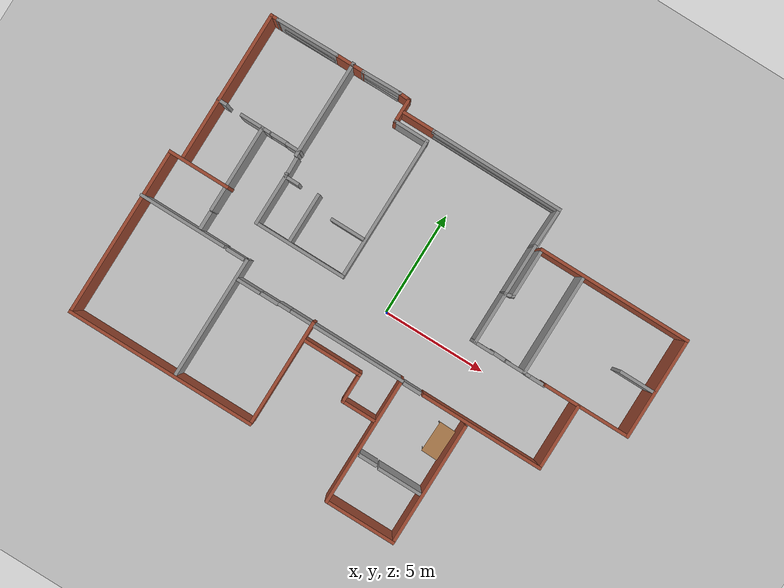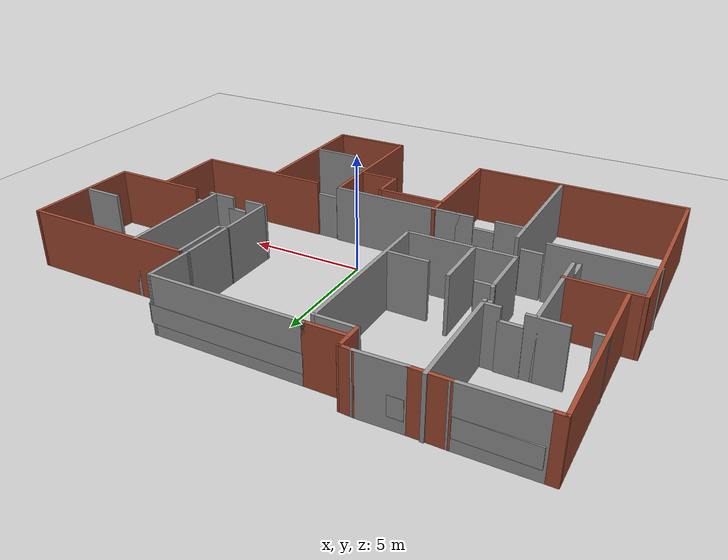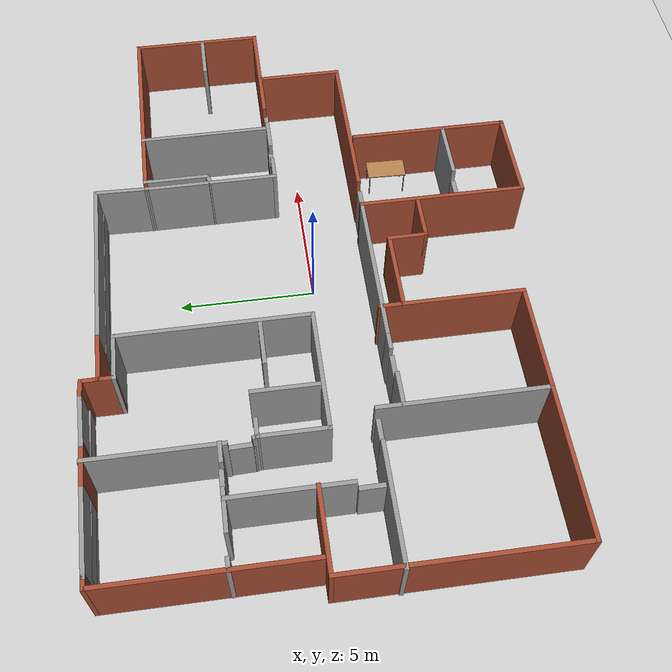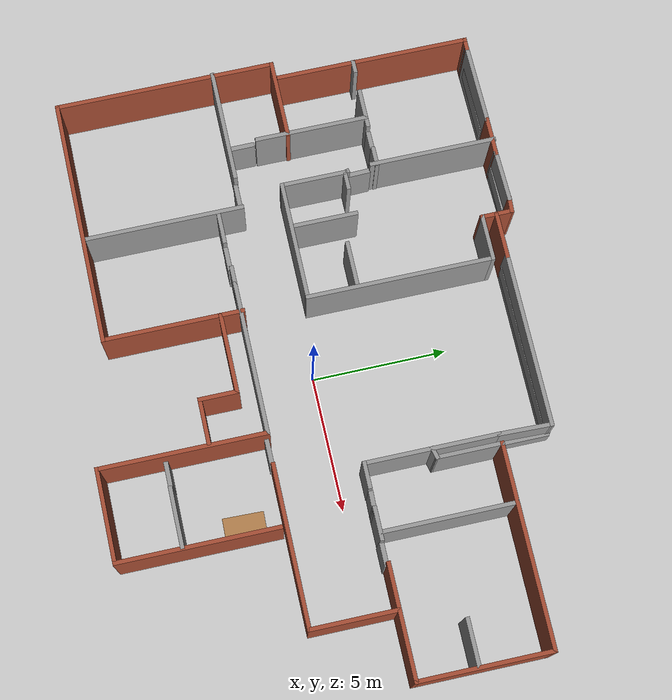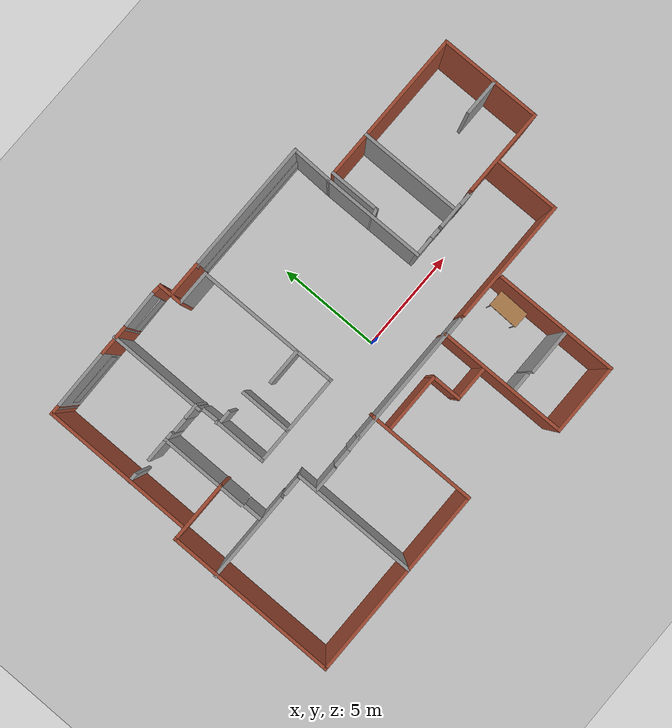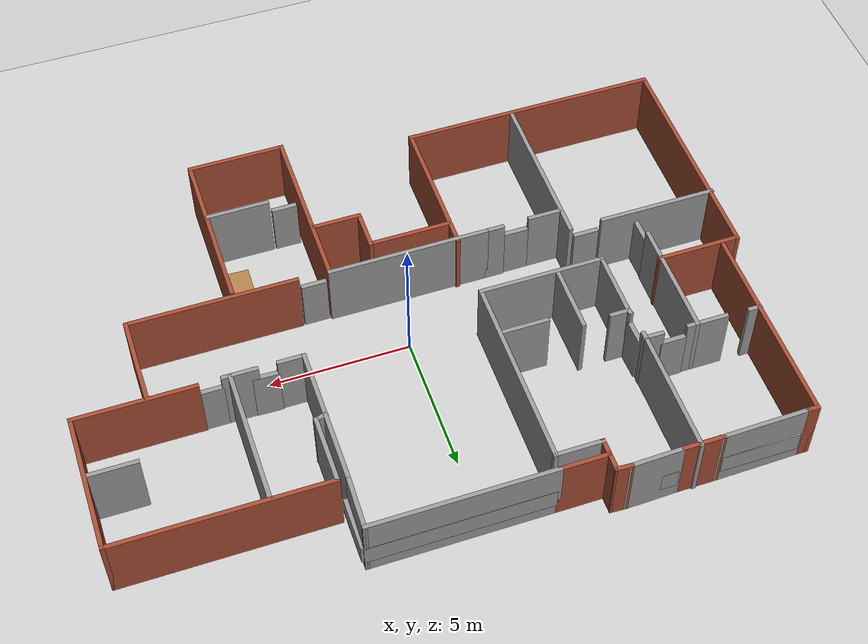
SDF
<sdf version="1.6">
 <world name="default">
  <model name="ground_plane">
   <static>1</static>
   <link name="link">
    <collision name="collision">
     <geometry><plane><normal>0 0 1</normal><size>100 100</size></plane></geometry>
     <surface>
      <contact><collide_bitmask>65535</collide_bitmask></contact>
      <friction><ode><mu>100</mu><mu2>50</mu2></ode></friction>
     </surface>
    </collision>
    <visual name="visual">
     <cast_shadows>0</cast_shadows>
     <geometry><plane><normal>0 0 1</normal><size>100 100</size></plane></geometry>
     <material>
      <script><uri>file://media/materials/scripts/gazebo.material</uri><name>Gazebo/Grey</name></script>
     </material>
    </visual>
   </link>
  </model>
  <model name="myworld">
   <pose>-0.01124 0.05347 0 0 -0 0</pose>
   <link name="Door_0">
    <collision name="Door_0_Collision">
     <geometry><box><size>0.9 0.17 2</size></box></geometry>
     <pose>0 0 1 0 -0 0</pose>
    </collision>
    <visual name="Door_0_Visual">
     <pose>0 0 1 0 -0 0</pose>
     <geometry><box><size>0.9 0.17 2</size></box></geometry>
     <material>
      <script><uri>file://media/materials/scripts/gazebo.material</uri><name>Gazebo/Grey</name></script>
     </material>
    </visual>
    <pose>-6.89041 -1.3623 0 0 -0 0</pose>
   </link>
   <link name="Door_1">
    <collision name="Door_1_Collision">
     <geometry><box><size>0.9 0.17 2</size></box></geometry>
     <pose>0 0 1 0 -0 0</pose>
    </collision>
    <visual name="Door_1_Visual">
     <pose>0 0 1 0 -0 0</pose>
     <geometry><box><size>0.9 0.17 2</size></box></geometry>
     <material>
      <script><uri>file://media/materials/scripts/gazebo.material</uri><name>Gazebo/Grey</name></script>
     </material>
    </visual>
    <pose>-4.6028 -2.2135 0 0 -0 0</pose>
   </link>
   <link name="Door_3">
    <collision name="Door_3_Collision">
     <geometry><box><size>0.9 0.17 2</size></box></geometry>
     <pose>0 0 1 0 -0 0</pose>
    </collision>
    <visual name="Door_3_Visual">
     <pose>0 0 1 0 -0 0</pose>
     <geometry><box><size>0.9 0.17 2</size></box></geometry>
     <material>
      <script><uri>file://media/materials/scripts/gazebo.material</uri><name>Gazebo/Grey</name></script>
     </material>
    </visual>
    <pose>2.68566 -2.2401 0 0 -0 0</pose>
   </link>
   <link name="Door_4">
    <collision name="Door_4_Collision">
     <geometry><box><size>0.9 0.17 2</size></box></geometry>
     <pose>0 0 1 0 -0 0</pose>
    </collision>
    <visual name="Door_4_Visual">
     <pose>0 0 1 0 -0 0</pose>
     <geometry><box><size>0.9 0.17 2</size></box></geometry>
     <material>
      <script><uri>file://media/materials/scripts/gazebo.material</uri><name>Gazebo/Grey</name></script>
     </material>
    </visual>
    <pose>2.71226 -5.88433 0 0 -0 0</pose>
   </link>
   <link name="Door_5">
    <collision name="Door_5_Collision">
     <geometry><box><size>0.9 0.17 2</size></box></geometry>
     <pose>0 0 1 0 -0 0</pose>
    </collision>
    <visual name="Door_5_Visual">
     <pose>0 0 1 0 -0 0</pose>
     <geometry><box><size>0.9 0.17 2</size></box></geometry>
     <material>
      <script><uri>file://media/materials/scripts/gazebo.material</uri><name>Gazebo/Grey</name></script>
     </material>
    </visual>
    <pose>7.07469 0.898721 0 0 0 -3.14159</pose>
   </link>
   <link name="Door_6">
    <collision name="Door_6_Collision">
     <geometry><box><size>0.9 0.17 2</size></box></geometry>
     <pose>0 0 1 0 -0 0</pose>
    </collision>
    <visual name="Door_6_Visual">
     <pose>0 0 1 0 -0 0</pose>
     <geometry><box><size>0.9 0.17 2</size></box></geometry>
     <material>
      <script><uri>file://media/materials/scripts/gazebo.material</uri><name>Gazebo/Grey</name></script>
     </material>
    </visual>
    <pose>5.23928 0.925321 0 0 -0 3.11493</pose>
   </link>
   <link name="Door_7">
    <collision name="Door_7_Collision">
     <geometry><box><size>0.9 0.17 2</size></box></geometry>
     <pose>0 0 1 0 -0 0</pose>
    </collision>
    <visual name="Door_7_Visual">
     <pose>0 0 1 0 -0 0</pose>
     <geometry><box><size>0.9 0.17 2</size></box></geometry>
     <material>
      <script><uri>file://media/materials/scripts/gazebo.material</uri><name>Gazebo/Grey</name></script>
     </material>
    </visual>
    <pose>-8.75243 -0.803692 0 0 0 -1.56587</pose>
   </link>
   <link name="Door_8">
    <collision name="Door_8_Collision">
     <geometry><box><size>0.9 0.17 2</size></box></geometry>
     <pose>0 0 1 0 -0 0</pose>
    </collision>
    <visual name="Door_8_Visual">
     <pose>0 0 1 0 -0 0</pose>
     <geometry><box><size>0.9 0.17 2</size></box></geometry>
     <material>
      <script><uri>file://media/materials/scripts/gazebo.material</uri><name>Gazebo/Grey</name></script>
     </material>
    </visual>
    <pose>-6.82534 3.1576 0 0 -0 1.6011</pose>
   </link>
   <link name="Door_9">
    <collision name="Door_9_Collision">
     <geometry><box><size>0.9 0.17 2</size></box></geometry>
     <pose>0 0 1 0 -0 0</pose>
    </collision>
    <visual name="Door_9_Visual">
     <pose>0 0 1 0 -0 0</pose>
     <geometry><box><size>0.9 0.17 2</size></box></geometry>
     <material>
      <script><uri>file://media/materials/scripts/gazebo.material</uri><name>Gazebo/Grey</name></script>
     </material>
    </visual>
    <pose>-7.90122 3.88033 0 0 0 -3.13928</pose>
   </link>
   <link name="Wall_13">
    <collision name="Wall_13_Collision">
     <geometry><box><size>9.25 0.15 2.5</size></box></geometry>
     <pose>0 0 1.25 0 -0 0</pose>
    </collision>
    <visual name="Wall_13_Visual">
     <pose>0 0 1.25 0 -0 0</pose>
     <geometry><box><size>9.25 0.15 2.5</size></box></geometry>
     <material>
      <script><uri>file://media/materials/scripts/gazebo.material</uri><name>Gazebo/Bricks</name></script>
      <ambient>1 1 1 1</ambient>
     </material>
     <meta><layer>0</layer></meta>
    </visual>
    <pose>-6.98459 -7.19234 0 0 -0 0</pose>
   </link>
   <link name="Wall_14">
    <collision name="Wall_14_Collision">
     <geometry><box><size>5.25 0.15 2.5</size></box></geometry>
     <pose>0 0 1.25 0 -0 0</pose>
    </collision>
    <visual name="Wall_14_Visual">
     <pose>0 0 1.25 0 -0 0</pose>
     <geometry><box><size>5.25 0.15 2.5</size></box></geometry>
     <material>
      <script><uri>file://media/materials/scripts/gazebo.material</uri><name>Gazebo/Bricks</name></script>
      <ambient>1 1 1 1</ambient>
     </material>
     <meta><layer>0</layer></meta>
    </visual>
    <pose>-2.43459 -4.64234 0 0 -0 1.5708</pose>
   </link>
   <link name="Wall_16">
    <collision name="Wall_16_Collision">
     <geometry><box><size>3 0.15 2.5</size></box></geometry>
     <pose>0 0 1.25 0 -0 0</pose>
    </collision>
    <visual name="Wall_16_Visual">
     <pose>0 0 1.25 0 -0 0</pose>
     <geometry><box><size>3 0.15 2.5</size></box></geometry>
     <material>
      <script><uri>file://media/materials/scripts/gazebo.material</uri><name>Gazebo/Bricks</name></script>
      <ambient>1 1 1 1</ambient>
     </material>
     <meta><layer>0</layer></meta>
    </visual>
    <pose>-0.990907 -2.90731 0 0 -0 0</pose>
   </link>
   <link name="Wall_17">
    <collision name="Wall_17_Collision">
     <geometry><box><size>1.5 0.15 2.5</size></box></geometry>
     <pose>0 0 1.25 0 -0 0</pose>
    </collision>
    <visual name="Wall_17_Visual">
     <pose>0 0 1.25 0 -0 0</pose>
     <geometry><box><size>1.5 0.15 2.5</size></box></geometry>
     <material>
      <script><uri>file://media/materials/scripts/gazebo.material</uri><name>Gazebo/Bricks</name></script>
      <ambient>1 1 1 1</ambient>
     </material>
     <meta><layer>0</layer></meta>
    </visual>
    <pose>0.434093 -3.5823 0 0 0 -1.5708</pose>
   </link>
   <link name="Wall_18">
    <collision name="Wall_18_Collision">
     <geometry><box><size>1.75 0.15 2.5</size></box></geometry>
     <pose>0 0 1.25 0 -0 0</pose>
    </collision>
    <visual name="Wall_18_Visual">
     <pose>0 0 1.25 0 -0 0</pose>
     <geometry><box><size>1.75 0.15 2.5</size></box></geometry>
     <material>
      <script><uri>file://media/materials/scripts/gazebo.material</uri><name>Gazebo/Bricks</name></script>
      <ambient>1 1 1 1</ambient>
     </material>
     <meta><layer>0</layer></meta>
    </visual>
    <pose>1.23409 -4.2573 0 0 -0 0</pose>
   </link>
   <link name="Wall_2">
    <collision name="Wall_2_Collision">
     <geometry><box><size>0.5 0.15 2.5</size></box></geometry>
     <pose>0 0 1.25 0 -0 0</pose>
    </collision>
    <visual name="Wall_2_Visual">
     <pose>0 0 1.25 0 -0 0</pose>
     <geometry><box><size>0.5 0.15 2.5</size></box></geometry>
     <material>
      <script><uri>file://media/materials/scripts/gazebo.material</uri><name>Gazebo/Bricks</name></script>
      <ambient>1 1 1 1</ambient>
     </material>
     <meta><layer>0</layer></meta>
    </visual>
    <pose>-10.7791 8.16539 0 0 -0 3.14159</pose>
   </link>
   <link name="Wall_20">
    <collision name="Wall_20_Collision">
     <geometry><box><size>6 0.15 2.5</size></box></geometry>
     <pose>0 0 1.25 0 -0 0</pose>
    </collision>
    <visual name="Wall_20_Visual">
     <pose>0 0 1.25 0 -0 0</pose>
     <geometry><box><size>6 0.15 2.5</size></box></geometry>
     <material>
      <script><uri>file://media/materials/scripts/gazebo.material</uri><name>Gazebo/Grey</name></script>
      <ambient>1 1 1 1</ambient>
     </material>
     <meta><layer>0</layer></meta>
    </visual>
    <pose>-6.27739 -4.25049 0 0 0 -1.5708</pose>
   </link>
   <link name="Wall_24">
    <collision name="Wall_24_Collision">
     <geometry><box><size>1.25 0.15 2.5</size></box></geometry>
     <pose>0 0 1.25 0 -0 0</pose>
    </collision>
    <visual name="Wall_24_Visual">
     <pose>0 0 1.25 0 -0 0</pose>
     <geometry><box><size>1.25 0.15 2.5</size></box></geometry>
     <material>
      <script><uri>file://media/materials/scripts/gazebo.material</uri><name>Gazebo/Grey</name></script>
      <ambient>1 1 1 1</ambient>
     </material>
     <meta><layer>0</layer></meta>
    </visual>
    <pose>-5.68087 -2.20945 0 0 -0 0</pose>
   </link>
   <link name="Wall_26">
    <collision name="Wall_26_Collision">
     <geometry><box><size>5.75 0.15 2.5</size></box></geometry>
     <pose>0 0 1.25 0 -0 0</pose>
    </collision>
    <visual name="Wall_26_Visual">
     <pose>0 0 1.25 0 -0 0</pose>
     <geometry><box><size>5.75 0.15 2.5</size></box></geometry>
     <material>
      <script><uri>file://media/materials/scripts/gazebo.material</uri><name>Gazebo/Grey</name></script>
      <ambient>1 1 1 1</ambient>
     </material>
     <meta><layer>0</layer></meta>
    </visual>
    <pose>-0.685957 -2.16292 0 0 -0 0</pose>
   </link>
   <link name="Wall_27">
    <collision name="Wall_27_Collision">
     <geometry><box><size>6.25 0.15 2.5</size></box></geometry>
     <pose>0 0 1.25 0 -0 0</pose>
    </collision>
    <visual name="Wall_27_Visual">
     <pose>0 0 1.25 0 -0 0</pose>
     <geometry><box><size>6.25 0.15 2.5</size></box></geometry>
     <material>
      <script><uri>file://media/materials/scripts/gazebo.material</uri><name>Gazebo/Bricks</name></script>
      <ambient>1 1 1 1</ambient>
     </material>
     <meta><layer>0</layer></meta>
    </visual>
    <pose>2.11404 -5.21292 0 0 0 -1.5708</pose>
   </link>
   <link name="Wall_28">
    <collision name="Wall_28_Collision">
     <geometry><box><size>3.5 0.15 2.5</size></box></geometry>
     <pose>0 0 1.25 0 -0 0</pose>
    </collision>
    <visual name="Wall_28_Visual">
     <pose>0 0 1.25 0 -0 0</pose>
     <geometry><box><size>3.5 0.15 2.5</size></box></geometry>
     <material>
      <script><uri>file://media/materials/scripts/gazebo.material</uri><name>Gazebo/Bricks</name></script>
      <ambient>1 1 1 1</ambient>
     </material>
     <meta><layer>0</layer></meta>
    </visual>
    <pose>3.78904 -8.26292 0 0 -0 0</pose>
   </link>
   <link name="Wall_29">
    <collision name="Wall_29_Collision">
     <geometry><box><size>6 0.15 2.5</size></box></geometry>
     <pose>0 0 1.25 0 -0 0</pose>
    </collision>
    <visual name="Wall_29_Visual">
     <pose>0 0 1.25 0 -0 0</pose>
     <geometry><box><size>6 0.15 2.5</size></box></geometry>
     <material>
      <script><uri>file://media/materials/scripts/gazebo.material</uri><name>Gazebo/Bricks</name></script>
      <ambient>1 1 1 1</ambient>
     </material>
     <meta><layer>0</layer></meta>
    </visual>
    <pose>5.46404 -5.33792 0 0 -0 1.5708</pose>
   </link>
   <link name="Wall_3">
    <collision name="Wall_3_Collision">
     <geometry><box><size>7.25 0.15 2.5</size></box></geometry>
     <pose>0 0 1.25 0 -0 0</pose>
    </collision>
    <visual name="Wall_3_Visual">
     <pose>0 0 1.25 0 -0 0</pose>
     <geometry><box><size>7.25 0.15 2.5</size></box></geometry>
     <material>
      <script><uri>file://media/materials/scripts/gazebo.material</uri><name>Gazebo/Bricks</name></script>
      <ambient>1 1 1 1</ambient>
     </material>
     <meta><layer>0</layer></meta>
    </visual>
    <pose>-10.9541 4.61539 0 0 0 -1.5708</pose>
   </link>
   <link name="Wall_31">
    <collision name="Wall_31_Collision">
     <geometry><box><size>6 0.15 2.5</size></box></geometry>
     <pose>0 0 1.25 0 -0 0</pose>
    </collision>
    <visual name="Wall_31_Visual">
     <pose>0 0 1.25 0 -0 0</pose>
     <geometry><box><size>6 0.15 2.5</size></box></geometry>
     <material>
      <script><uri>file://media/materials/scripts/gazebo.material</uri><name>Gazebo/Bricks</name></script>
      <ambient>1 1 1 1</ambient>
     </material>
     <meta><layer>0</layer></meta>
    </visual>
    <pose>6.18501 -2.20945 0 0 -0 0</pose>
   </link>
   <link name="Wall_32">
    <collision name="Wall_32_Collision">
     <geometry><box><size>3.25 0.15 2.5</size></box></geometry>
     <pose>0 0 1.25 0 -0 0</pose>
    </collision>
    <visual name="Wall_32_Visual">
     <pose>0 0 1.25 0 -0 0</pose>
     <geometry><box><size>3.25 0.15 2.5</size></box></geometry>
     <material>
      <script><uri>file://media/materials/scripts/gazebo.material</uri><name>Gazebo/Bricks</name></script>
      <ambient>1 1 1 1</ambient>
     </material>
     <meta><layer>0</layer></meta>
    </visual>
    <pose>9.11001 -0.659446 0 0 -0 1.5708</pose>
   </link>
   <link name="Wall_34">
    <collision name="Wall_34_Collision">
     <geometry><box><size>4.25 0.15 2.5</size></box></geometry>
     <pose>0 0 1.25 0 -0 0</pose>
    </collision>
    <visual name="Wall_34_Visual">
     <pose>0 0 1.25 0 -0 0</pose>
     <geometry><box><size>4.25 0.15 2.5</size></box></geometry>
     <material>
      <script><uri>file://media/materials/scripts/gazebo.material</uri><name>Gazebo/Grey</name></script>
      <ambient>1 1 1 1</ambient>
     </material>
     <meta><layer>0</layer></meta>
    </visual>
    <pose>-9.53701 -1.32549 0 0 -0 3.14159</pose>
   </link>
   <link name="Wall_36">
    <collision name="Wall_36_Collision">
     <geometry><box><size>2.25 0.15 2.5</size></box></geometry>
     <pose>0 0 1.25 0 -0 0</pose>
    </collision>
    <visual name="Wall_36_Visual">
     <pose>0 0 1.25 0 -0 0</pose>
     <geometry><box><size>2.25 0.15 2.5</size></box></geometry>
     <material>
      <script><uri>file://media/materials/scripts/gazebo.material</uri><name>Gazebo/Grey</name></script>
      <ambient>1 1 1 1</ambient>
     </material>
     <meta><layer>0</layer></meta>
    </visual>
    <pose>4.35653 -5.88483 0 0 -0 0</pose>
   </link>
   <link name="Wall_38">
    <collision name="Wall_38_Collision">
     <geometry><box><size>7.5 0.15 2.5</size></box></geometry>
     <pose>0 0 1.25 0 -0 0</pose>
    </collision>
    <visual name="Wall_38_Visual">
     <pose>0 0 1.25 0 -0 0</pose>
     <geometry><box><size>7.5 0.15 2.5</size></box></geometry>
     <material>
      <script><uri>file://media/materials/scripts/gazebo.material</uri><name>Gazebo/Bricks</name></script>
      <ambient>1 1 1 1</ambient>
     </material>
     <meta><layer>0</layer></meta>
    </visual>
    <pose>7.91201 5.79267 0 0 -0 0</pose>
   </link>
   <link name="Wall_39">
    <collision name="Wall_39_Collision">
     <geometry><box><size>5 0.15 2.5</size></box></geometry>
     <pose>0 0 1.25 0 -0 0</pose>
    </collision>
    <visual name="Wall_39_Visual">
     <pose>0 0 1.25 0 -0 0</pose>
     <geometry><box><size>5 0.15 2.5</size></box></geometry>
     <material>
      <script><uri>file://media/materials/scripts/gazebo.material</uri><name>Gazebo/Bricks</name></script>
      <ambient>1 1 1 1</ambient>
     </material>
     <meta><layer>0</layer></meta>
    </visual>
    <pose>11.587 3.36767 0 0 0 -1.5708</pose>
   </link>
   <link name="Wall_40">
    <collision name="Wall_40_Collision">
     <geometry><box><size>4.25 0.15 2.5</size></box></geometry>
     <pose>0 0 1.25 0 -0 0</pose>
    </collision>
    <visual name="Wall_40_Visual">
     <pose>0 0 1.25 0 -0 0</pose>
     <geometry><box><size>4.25 0.15 2.5</size></box></geometry>
     <material>
      <script><uri>file://media/materials/scripts/gazebo.material</uri><name>Gazebo/Bricks</name></script>
      <ambient>1 1 1 1</ambient>
     </material>
     <meta><layer>0</layer></meta>
    </visual>
    <pose>9.53701 0.942667 0 0 -0 3.14159</pose>
   </link>
   <link name="Wall_42">
    <collision name="Wall_42_Collision">
     <geometry><box><size>1.75 0.15 2.5</size></box></geometry>
     <pose>0 0 1.25 0 -0 0</pose>
    </collision>
    <visual name="Wall_42_Visual">
     <pose>0 0 1.25 0 -0 0</pose>
     <geometry><box><size>1.75 0.15 2.5</size></box></geometry>
     <material>
      <script><uri>file://media/materials/scripts/gazebo.material</uri><name>Gazebo/Grey</name></script>
      <ambient>1 1 1 1</ambient>
     </material>
     <meta><layer>0</layer></meta>
    </visual>
    <pose>10.7129 3.1408 0 0 -0 0</pose>
   </link>
   <link name="Wall_44">
    <collision name="Wall_44_Collision">
     <geometry><box><size>5 0.15 2.5</size></box></geometry>
     <pose>0 0 1.25 0 -0 0</pose>
    </collision>
    <visual name="Wall_44_Visual">
     <pose>0 0 1.25 0 -0 0</pose>
     <geometry><box><size>5 0.15 2.5</size></box></geometry>
     <material>
      <script><uri>file://media/materials/scripts/gazebo.material</uri><name>Gazebo/Grey</name></script>
      <ambient>1 1 1 1</ambient>
     </material>
     <meta><layer>0</layer></meta>
    </visual>
    <pose>6.37711 3.36767 0 0 0 -1.5708</pose>
   </link>
   <link name="Wall_46">
    <collision name="Wall_46_Collision">
     <geometry><box><size>1.25 0.15 2.5</size></box></geometry>
     <pose>0 0 1.25 0 -0 0</pose>
    </collision>
    <visual name="Wall_46_Visual">
     <pose>0 0 1.25 0 -0 0</pose>
     <geometry><box><size>1.25 0.15 2.5</size></box></geometry>
     <material>
      <script><uri>file://media/materials/scripts/gazebo.material</uri><name>Gazebo/Grey</name></script>
      <ambient>1 1 1 1</ambient>
     </material>
     <meta><layer>0</layer></meta>
    </visual>
    <pose>6.05973 0.907656 0 0 -0 3.14159</pose>
   </link>
   <link name="Wall_48">
    <collision name="Wall_48_Collision">
     <geometry><box><size>1 0.15 2.5</size></box></geometry>
     <pose>0 0 1.25 0 -0 0</pose>
    </collision>
    <visual name="Wall_48_Visual">
     <pose>0 0 1.25 0 -0 0</pose>
     <geometry><box><size>1 0.15 2.5</size></box></geometry>
     <material>
      <script><uri>file://media/materials/scripts/gazebo.material</uri><name>Gazebo/Grey</name></script>
      <ambient>1 1 1 1</ambient>
     </material>
     <meta><layer>0</layer></meta>
    </visual>
    <pose>4.32378 0.907656 0 0 -0 3.14159</pose>
   </link>
   <link name="Wall_49">
    <collision name="Wall_49_Collision">
     <geometry><box><size>5 0.15 2.5</size></box></geometry>
     <pose>0 0 1.25 0 -0 0</pose>
    </collision>
    <visual name="Wall_49_Visual">
     <pose>0 0 1.25 0 -0 0</pose>
     <geometry><box><size>5 0.15 2.5</size></box></geometry>
     <material>
      <script><uri>file://media/materials/scripts/gazebo.material</uri><name>Gazebo/Grey</name></script>
      <ambient>1 1 1 1</ambient>
     </material>
     <meta><layer>0</layer></meta>
    </visual>
    <pose>3.89878 3.33266 0 0 -0 1.5708</pose>
   </link>
   <link name="Wall_51">
    <collision name="Wall_51_Collision">
     <geometry><box><size>2.5 0.15 2.5</size></box></geometry>
     <pose>0 0 1.25 0 -0 0</pose>
    </collision>
    <visual name="Wall_51_Visual">
     <pose>0 0 1.25 0 -0 0</pose>
     <geometry><box><size>2.5 0.15 2.5</size></box></geometry>
     <material>
      <script><uri>file://media/materials/scripts/gazebo.material</uri><name>Gazebo/Grey</name></script>
      <ambient>1 1 1 1</ambient>
     </material>
     <meta><layer>0</layer></meta>
    </visual>
    <pose>4.23701 4.61767 0 0 0 -1.5708</pose>
   </link>
   <link name="Wall_52">
    <collision name="Wall_52_Collision">
     <geometry><box><size>0.5 0.15 2.5</size></box></geometry>
     <pose>0 0 1.25 0 -0 0</pose>
    </collision>
    <visual name="Wall_52_Visual">
     <pose>0 0 1.25 0 -0 0</pose>
     <geometry><box><size>0.5 0.15 2.5</size></box></geometry>
     <material>
      <script><uri>file://media/materials/scripts/gazebo.material</uri><name>Gazebo/Grey</name></script>
      <ambient>1 1 1 1</ambient>
     </material>
     <meta><layer>0</layer></meta>
    </visual>
    <pose>4.06798 3.39737 0 0 0 -2.87979</pose>
   </link>
   <link name="Wall_54">
    <collision name="Wall_54_Collision">
     <geometry><box><size>1.5 0.15 2.5</size></box></geometry>
     <pose>0 0 1.25 0 -0 0</pose>
    </collision>
    <visual name="Wall_54_Visual">
     <pose>0 0 1.25 0 -0 0</pose>
     <geometry><box><size>1.5 0.15 2.5</size></box></geometry>
     <material>
      <script><uri>file://media/materials/scripts/gazebo.material</uri><name>Gazebo/Bricks</name></script>
      <ambient>1 1 1 1</ambient>
     </material>
     <meta><layer>0</layer></meta>
    </visual>
    <pose>-6.99811 8.21191 0 0 -0 0</pose>
   </link>
   <link name="Wall_56">
    <collision name="Wall_56_Collision">
     <geometry><box><size>4.75 0.15 2.5</size></box></geometry>
     <pose>0 0 1.25 0 -0 0</pose>
    </collision>
    <visual name="Wall_56_Visual">
     <pose>0 0 1.25 0 -0 0</pose>
     <geometry><box><size>4.75 0.15 2.5</size></box></geometry>
     <material>
      <script><uri>file://media/materials/scripts/gazebo.material</uri><name>Gazebo/Grey</name></script>
      <ambient>1 1 1 1</ambient>
     </material>
     <meta><layer>0</layer></meta>
    </visual>
    <pose>-6.8822 5.95843 0 0 0 -1.5708</pose>
   </link>
   <link name="Wall_58">
    <collision name="Wall_58_Collision">
     <geometry><box><size>0.75 0.15 2.5</size></box></geometry>
     <pose>0 0 1.25 0 -0 0</pose>
    </collision>
    <visual name="Wall_58_Visual">
     <pose>0 0 1.25 0 -0 0</pose>
     <geometry><box><size>0.75 0.15 2.5</size></box></geometry>
     <material>
      <script><uri>file://media/materials/scripts/gazebo.material</uri><name>Gazebo/Grey</name></script>
      <ambient>1 1 1 1</ambient>
     </material>
     <meta><layer>0</layer></meta>
    </visual>
    <pose>-6.48434 2.62904 0 0 -0 3.14159</pose>
   </link>
   <link name="Wall_59">
    <collision name="Wall_59_Collision">
     <geometry><box><size>0.25 0.15 2.5</size></box></geometry>
     <pose>0 0 1.25 0 -0 0</pose>
    </collision>
    <visual name="Wall_59_Visual">
     <pose>0 0 1.25 0 -0 0</pose>
     <geometry><box><size>0.25 0.15 2.5</size></box></geometry>
     <material>
      <script><uri>file://media/materials/scripts/gazebo.material</uri><name>Gazebo/Grey</name></script>
      <ambient>1 1 1 1</ambient>
     </material>
     <meta><layer>0</layer></meta>
    </visual>
    <pose>-6.79728 2.67734 0 0 -0 1.8326</pose>
   </link>
   <link name="Wall_6">
    <collision name="Wall_6_Collision">
     <geometry><box><size>3 0.15 2.5</size></box></geometry>
     <pose>0 0 1.25 0 -0 0</pose>
    </collision>
    <visual name="Wall_6_Visual">
     <pose>0 0 1.25 0 -0 0</pose>
     <geometry><box><size>3 0.15 2.5</size></box></geometry>
     <material>
      <script><uri>file://media/materials/scripts/gazebo.material</uri><name>Gazebo/Bricks</name></script>
      <ambient>1 1 1 1</ambient>
     </material>
     <meta><layer>0</layer></meta>
    </visual>
    <pose>-10.1096 0.907656 0 0 -0 0</pose>
   </link>
   <link name="Wall_62">
    <collision name="Wall_62_Collision">
     <geometry><box><size>2.5 0.15 2.5</size></box></geometry>
     <pose>0 0 1.25 0 -0 0</pose>
    </collision>
    <visual name="Wall_62_Visual">
     <pose>0 0 1.25 0 -0 0</pose>
     <geometry><box><size>2.5 0.15 2.5</size></box></geometry>
     <material>
      <script><uri>file://media/materials/scripts/gazebo.material</uri><name>Gazebo/Grey</name></script>
      <ambient>1 1 1 1</ambient>
     </material>
     <meta><layer>0</layer></meta>
    </visual>
    <pose>-6.78434 1.45404 0 0 0 -1.5708</pose>
   </link>
   <link name="Wall_63">
    <collision name="Wall_63_Collision">
     <geometry><box><size>4.5 0.15 2.5</size></box></geometry>
     <pose>0 0 1.25 0 -0 0</pose>
    </collision>
    <visual name="Wall_63_Visual">
     <pose>0 0 1.25 0 -0 0</pose>
     <geometry><box><size>4.5 0.15 2.5</size></box></geometry>
     <material>
      <script><uri>file://media/materials/scripts/gazebo.material</uri><name>Gazebo/Grey</name></script>
      <ambient>1 1 1 1</ambient>
     </material>
     <meta><layer>0</layer></meta>
    </visual>
    <pose>-4.60934 0.279041 0 0 -0 0</pose>
   </link>
   <link name="Wall_64">
    <collision name="Wall_64_Collision">
     <geometry><box><size>7 0.15 2.5</size></box></geometry>
     <pose>0 0 1.25 0 -0 0</pose>
    </collision>
    <visual name="Wall_64_Visual">
     <pose>0 0 1.25 0 -0 0</pose>
     <geometry><box><size>7 0.15 2.5</size></box></geometry>
     <material>
      <script><uri>file://media/materials/scripts/gazebo.material</uri><name>Gazebo/Grey</name></script>
      <ambient>1 1 1 1</ambient>
     </material>
     <meta><layer>0</layer></meta>
    </visual>
    <pose>-2.43434 3.70404 0 0 -0 1.5708</pose>
   </link>
   <link name="Wall_65">
    <collision name="Wall_65_Collision">
     <geometry><box><size>1.75 0.15 2.5</size></box></geometry>
     <pose>0 0 1.25 0 -0 0</pose>
    </collision>
    <visual name="Wall_65_Visual">
     <pose>0 0 1.25 0 -0 0</pose>
     <geometry><box><size>1.75 0.15 2.5</size></box></geometry>
     <material>
      <script><uri>file://media/materials/scripts/gazebo.material</uri><name>Gazebo/Grey</name></script>
      <ambient>1 1 1 1</ambient>
     </material>
     <meta><layer>0</layer></meta>
    </visual>
    <pose>-3.23434 7.12904 0 0 -0 3.14159</pose>
   </link>
   <link name="Wall_66">
    <collision name="Wall_66_Collision">
     <geometry><box><size>1.25 0.15 2.5</size></box></geometry>
     <pose>0 0 1.25 0 -0 0</pose>
    </collision>
    <visual name="Wall_66_Visual">
     <pose>0 0 1.25 0 -0 0</pose>
     <geometry><box><size>1.25 0.15 2.5</size></box></geometry>
     <material>
      <script><uri>file://media/materials/scripts/gazebo.material</uri><name>Gazebo/Bricks</name></script>
      <ambient>1 1 1 1</ambient>
     </material>
     <meta><layer>0</layer></meta>
    </visual>
    <pose>-4.03434 7.67904 0 0 -0 1.5708</pose>
   </link>
   <link name="Wall_69">
    <collision name="Wall_69_Collision">
     <geometry><box><size>0.626047 0.15 2.5</size></box></geometry>
     <pose>0 0 1.25 0 -0 0</pose>
    </collision>
    <visual name="Wall_69_Visual">
     <pose>0 0 1.25 0 -0 0</pose>
     <geometry><box><size>0.626047 0.15 2.5</size></box></geometry>
     <material>
      <script><uri>file://media/materials/scripts/gazebo.material</uri><name>Gazebo/Bricks</name></script>
      <ambient>1 1 1 1</ambient>
     </material>
     <meta><layer>0</layer></meta>
    </visual>
    <pose>-4.27191 8.24374 0 0 0 -0.061784</pose>
   </link>
   <link name="Wall_71">
    <collision name="Wall_71_Collision">
     <geometry><box><size>1.75 0.15 2.5</size></box></geometry>
     <pose>0 0 1.25 0 -0 0</pose>
    </collision>
    <visual name="Wall_71_Visual">
     <pose>0 0 1.25 0 -0 0</pose>
     <geometry><box><size>1.75 0.15 2.5</size></box></geometry>
     <material>
      <script><uri>file://media/materials/scripts/gazebo.material</uri><name>Gazebo/Bricks</name></script>
      <ambient>1 1 1 1</ambient>
     </material>
     <meta><layer>0</layer></meta>
    </visual>
    <pose>-3.19772 7.65362 0 0 -0 0</pose>
   </link>
   <link name="Wall_73">
    <collision name="Wall_73_Collision">
     <geometry><box><size>1.75 0.15 2.5</size></box></geometry>
     <pose>0 0 1.25 0 -0 0</pose>
    </collision>
    <visual name="Wall_73_Visual">
     <pose>0 0 1.25 0 -0 0</pose>
     <geometry><box><size>1.75 0.15 2.5</size></box></geometry>
     <material>
      <script><uri>file://media/materials/scripts/gazebo.material</uri><name>Gazebo/Grey</name></script>
      <ambient>1 1 1 1</ambient>
     </material>
     <meta><layer>0</layer></meta>
    </visual>
    <pose>-3.29077 2.11728 0 0 -0 0</pose>
   </link>
   <link name="Wall_75">
    <collision name="Wall_75_Collision">
     <geometry><box><size>2.5 0.15 2.5</size></box></geometry>
     <pose>0 0 1.25 0 -0 0</pose>
    </collision>
    <visual name="Wall_75_Visual">
     <pose>0 0 1.25 0 -0 0</pose>
     <geometry><box><size>2.5 0.15 2.5</size></box></geometry>
     <material>
      <script><uri>file://media/materials/scripts/gazebo.material</uri><name>Gazebo/Grey</name></script>
      <ambient>1 1 1 1</ambient>
     </material>
     <meta><layer>0</layer></meta>
    </visual>
    <pose>-5.16082 1.50056 0 0 0 -1.5708</pose>
   </link>
   <link name="Wall_8">
    <collision name="Wall_8_Collision">
     <geometry><box><size>8.25 0.15 2.5</size></box></geometry>
     <pose>0 0 1.25 0 -0 0</pose>
    </collision>
    <visual name="Wall_8_Visual">
     <pose>0 0 1.25 0 -0 0</pose>
     <geometry><box><size>8.25 0.15 2.5</size></box></geometry>
     <material>
      <script><uri>file://media/materials/scripts/gazebo.material</uri><name>Gazebo/Bricks</name></script>
      <ambient>1 1 1 1</ambient>
     </material>
     <meta><layer>0</layer></meta>
    </visual>
    <pose>-11.5346 -3.14234 0 0 0 -1.5708</pose>
   </link>
   <link name="Wall_82">
    <collision name="Wall_82_Collision">
     <geometry><box><size>0.5 0.15 2.5</size></box></geometry>
     <pose>0 0 1.25 0 -0 0</pose>
    </collision>
    <visual name="Wall_82_Visual">
     <pose>0 0 1.25 0 -0 0</pose>
     <geometry><box><size>0.5 0.15 2.5</size></box></geometry>
     <material>
      <script><uri>file://media/materials/scripts/gazebo.material</uri><name>Gazebo/Grey</name></script>
      <ambient>1 1 1 1</ambient>
     </material>
     <meta><layer>0</layer></meta>
    </visual>
    <pose>-10.7948 3.89702 0 0 -0 3.14159</pose>
   </link>
   <link name="Wall_84">
    <collision name="Wall_84_Collision">
     <geometry><box><size>1.5 0.15 2.5</size></box></geometry>
     <pose>0 0 1.25 0 -0 0</pose>
    </collision>
    <visual name="Wall_84_Visual">
     <pose>0 0 1.25 0 -0 0</pose>
     <geometry><box><size>1.5 0.15 2.5</size></box></geometry>
     <material>
      <script><uri>file://media/materials/scripts/gazebo.material</uri><name>Gazebo/Grey</name></script>
      <ambient>1 1 1 1</ambient>
     </material>
     <meta><layer>0</layer></meta>
    </visual>
    <pose>-9.0883 3.86643 0 0 -0 0</pose>
   </link>
   <link name="Wall_86">
    <collision name="Wall_86_Collision">
     <geometry><box><size>4.25 0.15 2.5</size></box></geometry>
     <pose>0 0 1.25 0 -0 0</pose>
    </collision>
    <visual name="Wall_86_Visual">
     <pose>0 0 1.25 0 -0 0</pose>
     <geometry><box><size>4.25 0.15 2.5</size></box></geometry>
     <material>
      <script><uri>file://media/materials/scripts/gazebo.material</uri><name>Gazebo/Grey</name></script>
      <ambient>1 1 1 1</ambient>
     </material>
     <meta><layer>0</layer></meta>
    </visual>
    <pose>-8.72323 1.81643 0 0 0 -1.5708</pose>
   </link>
   <link name="Wall_88">
    <collision name="Wall_88_Collision">
     <geometry><box><size>0.75 0.15 2.5</size></box></geometry>
     <pose>0 0 1.25 0 -0 0</pose>
    </collision>
    <visual name="Wall_88_Visual">
     <pose>0 0 1.25 0 -0 0</pose>
     <geometry><box><size>0.75 0.15 2.5</size></box></geometry>
     <material>
      <script><uri>file://media/materials/scripts/gazebo.material</uri><name>Gazebo/Grey</name></script>
      <ambient>1 1 1 1</ambient>
     </material>
     <meta><layer>0</layer></meta>
    </visual>
    <pose>-7.15805 3.8478 0 0 -0 0</pose>
   </link>
   <link name="Wall_90">
    <collision name="Wall_90_Collision">
     <geometry><box><size>0.75 0.15 2.5</size></box></geometry>
     <pose>0 0 1.25 0 -0 0</pose>
    </collision>
    <visual name="Wall_90_Visual">
     <pose>0 0 1.25 0 -0 0</pose>
     <geometry><box><size>0.75 0.15 2.5</size></box></geometry>
     <material>
      <script><uri>file://media/materials/scripts/gazebo.material</uri><name>Gazebo/Grey</name></script>
      <ambient>1 1 1 1</ambient>
     </material>
     <meta><layer>0</layer></meta>
    </visual>
    <pose>-3.78596 -2.16292 0 0 -0 3.14159</pose>
   </link>
   <link name="Wall_92">
    <collision name="Wall_92_Collision">
     <geometry><box><size>3.08138 0.15 2.5</size></box></geometry>
     <pose>0 0 1.25 0 -0 0</pose>
    </collision>
    <visual name="Wall_92_Visual">
     <pose>0 0 1.25 0 -0 0</pose>
     <geometry><box><size>3.08138 0.15 2.5</size></box></geometry>
     <material>
      <script><uri>file://media/materials/scripts/gazebo.material</uri><name>Gazebo/Grey</name></script>
      <ambient>1 1 1 1</ambient>
     </material>
     <meta><layer>0</layer></meta>
    </visual>
    <pose>-9.13861 8.18865 0 0 -0 0.015872</pose>
   </link>
   <link name="Wall_94">
    <collision name="Wall_94_Collision">
     <geometry><box><size>1.96422 0.15 2.5</size></box></geometry>
     <pose>0 0 1.25 0 -0 0</pose>
    </collision>
    <visual name="Wall_94_Visual">
     <pose>0 0 1.25 0 -0 0</pose>
     <geometry><box><size>1.96422 0.15 2.5</size></box></geometry>
     <material>
      <script><uri>file://media/materials/scripts/gazebo.material</uri><name>Gazebo/Grey</name></script>
      <ambient>1 1 1 1</ambient>
     </material>
     <meta><layer>0</layer></meta>
    </visual>
    <pose>-5.4163 8.23517 0 0 -0 0.025647</pose>
   </link>
   <link name="Wall_96">
    <collision name="Wall_96_Collision">
     <geometry><box><size>6.5 0.15 2.5</size></box></geometry>
     <pose>0 0 1.25 0 -0 0</pose>
    </collision>
    <visual name="Wall_96_Visual">
     <pose>0 0 1.25 0 -0 0</pose>
     <geometry><box><size>6.5 0.15 2.5</size></box></geometry>
     <material>
      <script><uri>file://media/materials/scripts/gazebo.material</uri><name>Gazebo/Grey</name></script>
      <ambient>1 1 1 1</ambient>
     </material>
     <meta><layer>0</layer></meta>
    </visual>
    <pose>0.77728 7.65362 0 0 -0 0</pose>
   </link>
   <link name="Wall_97">
    <collision name="Wall_97_Collision">
     <geometry><box><size>2.04672 0.15 2.5</size></box></geometry>
     <pose>0 0 1.25 0 -0 0</pose>
    </collision>
    <visual name="Wall_97_Visual">
     <pose>0 0 1.25 0 -0 0</pose>
     <geometry><box><size>2.04672 0.15 2.5</size></box></geometry>
     <material>
      <script><uri>file://media/materials/scripts/gazebo.material</uri><name>Gazebo/Grey</name></script>
      <ambient>1 1 1 1</ambient>
     </material>
     <meta><layer>0</layer></meta>
    </visual>
    <pose>3.92553 6.70564 0 0 0 -1.59901</pose>
   </link>
   <link name="Window_1">
    <collision name="Window_1_Collision">
     <geometry><box><size>2.75102 0.2 0.8</size></box></geometry>
     <pose>0 0 0.4 0 -0 0</pose>
    </collision>
    <visual name="Window_1_Visual">
     <pose>0 0 0.4 0 -0 0</pose>
     <geometry><box><size>2.75102 0.2 0.8</size></box></geometry>
     <material>
      <script><uri>file://media/materials/scripts/gazebo.material</uri><name>Gazebo/Grey</name></script>
     </material>
    </visual>
    <pose>-9.13968 8.19476 0.5 0 -0 0</pose>
   </link>
   <link name="Window_2">
    <collision name="Window_2_Collision">
     <geometry><box><size>1.73101 0.2 0.8</size></box></geometry>
     <pose>0 0 0.4 0 -0 0</pose>
    </collision>
    <visual name="Window_2_Visual">
     <pose>0 0 0.4 0 -0 0</pose>
     <geometry><box><size>1.73101 0.2 0.8</size></box></geometry>
     <material>
      <script><uri>file://media/materials/scripts/gazebo.material</uri><name>Gazebo/Grey</name></script>
     </material>
    </visual>
    <pose>-5.38532 8.20371 0.5 0 -0 0</pose>
   </link>
   <link name="Window_3">
    <collision name="Window_3_Collision">
     <geometry><box><size>6.39682 0.2 0.8</size></box></geometry>
     <pose>0 0 0.4 0 -0 0</pose>
    </collision>
    <visual name="Window_3_Visual">
     <pose>0 0 0.4 0 -0 0</pose>
     <geometry><box><size>6.39682 0.2 0.8</size></box></geometry>
     <material>
      <script><uri>file://media/materials/scripts/gazebo.material</uri><name>Gazebo/Grey</name></script>
     </material>
    </visual>
    <pose>0.847762 7.64984 0.5 0 -0 0</pose>
   </link>
   <link name="Window_4">
    <collision name="Window_4_Collision">
     <geometry><box><size>1.88438 0.2 0.8</size></box></geometry>
     <pose>0 0 0.4 0 -0 0</pose>
    </collision>
    <visual name="Window_4_Visual">
     <pose>0 0 0.4 0 -0 0</pose>
     <geometry><box><size>1.88438 0.2 0.8</size></box></geometry>
     <material>
      <script><uri>file://media/materials/scripts/gazebo.material</uri><name>Gazebo/Grey</name></script>
     </material>
    </visual>
    <pose>4.03095 6.75784 0.5 0 0 -1.5708</pose>
   </link>
   <static>1</static>
  </model>
  <model name="table">
   <static>1</static>
   <link name="link">
    <collision name="surface">
     <pose>0 0 1 0 -0 0</pose>
     <geometry><box><size>1.5 0.8 0.03</size></box></geometry>
     <surface><friction><ode><mu>0.6</mu><mu2>0.6</mu2></ode></friction></surface>
    </collision>
    <visual name="visual1">
     <pose>0 0 1 0 -0 0</pose>
     <geometry><box><size>1.5 0.8 0.03</size></box></geometry>
     <material>
      <script><uri>file://media/materials/scripts/gazebo.material</uri><name>Gazebo/Wood</name></script>
     </material>
    </visual>
    <collision name="front_left_leg">
     <pose>0.68 0.38 0.5 0 -0 0</pose>
     <geometry><cylinder><radius>0.02</radius><length>1</length></cylinder></geometry>
    </collision>
    <visual name="front_left_leg">
     <pose>0.68 0.38 0.5 0 -0 0</pose>
     <geometry><cylinder><radius>0.02</radius><length>1</length></cylinder></geometry>
     <material>
      <script><uri>file://media/materials/scripts/gazebo.material</uri><name>Gazebo/Grey</name></script>
     </material>
    </visual>
    <collision name="front_right_leg">
     <pose>0.68 -0.38 0.5 0 -0 0</pose>
     <geometry><cylinder><radius>0.02</radius><length>1</length></cylinder></geometry>
    </collision>
    <visual name="front_right_leg">
     <pose>0.68 -0.38 0.5 0 -0 0</pose>
     <geometry><cylinder><radius>0.02</radius><length>1</length></cylinder></geometry>
     <material>
      <script><uri>file://media/materials/scripts/gazebo.material</uri><name>Gazebo/Grey</name></script>
     </material>
    </visual>
    <collision name="back_right_leg">
     <pose>-0.68 -0.38 0.5 0 -0 0</pose>
     <geometry><cylinder><radius>0.02</radius><length>1</length></cylinder></geometry>
    </collision>
    <visual name="back_right_leg">
     <pose>-0.68 -0.38 0.5 0 -0 0</pose>
     <geometry><cylinder><radius>0.02</radius><length>1</length></cylinder></geometry>
     <material>
      <script><uri>file://media/materials/scripts/gazebo.material</uri><name>Gazebo/Grey</name></script>
     </material>
    </visual>
    <collision name="back_left_leg">
     <pose>-0.68 0.38 0.5 0 -0 0</pose>
     <geometry><cylinder><radius>0.02</radius><length>1</length></cylinder></geometry>
    </collision>
    <visual name="back_left_leg">
     <pose>-0.68 0.38 0.5 0 -0 0</pose>
     <geometry><cylinder><radius>0.02</radius><length>1</length></cylinder></geometry>
     <material>
      <script><uri>file://media/materials/scripts/gazebo.material</uri><name>Gazebo/Grey</name></script>
     </material>
    </visual>
   </link>
   <pose>4.92709 -3.57411 0 0 0 -1.59801</pose>
  </model>
 </world>
</sdf>
